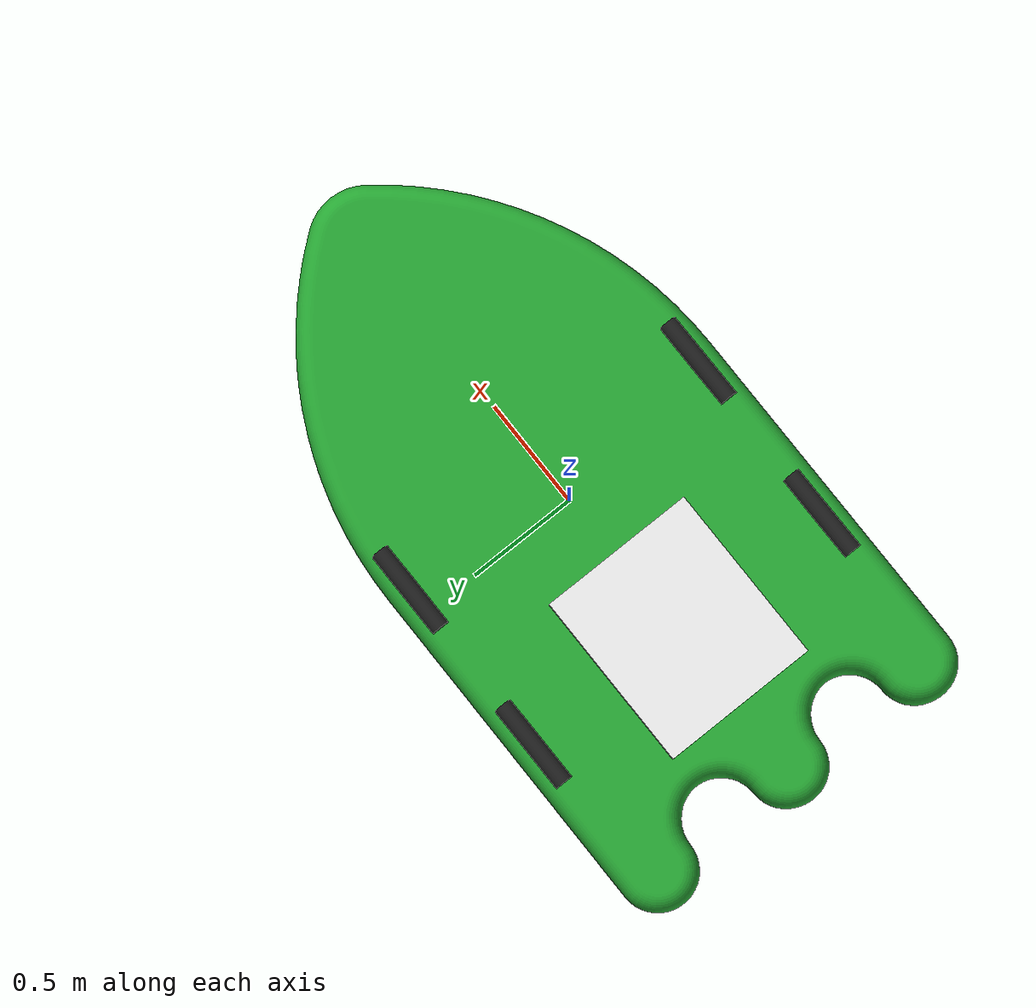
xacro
<?xml version="1.0"?>
<robot xmlns:xacro="http://ros.org/wiki/xacro" name="wam-v">

  <!-- Required arg for melodic and kinetic... -->
  <xacro:arg name="namespace" default="wamv"/>
  <xacro:property name="namespace" value="$(arg namespace)" scope="global" />
  <!-- Macro for creating the main collisions as simple shapes. -->
  <xacro:macro name="main_collisions" params="prefix reflect:=1">
    <!-- Main float -->
    <collision name="rear_${prefix}_beam_upper">
        <origin xyz="0 -0 0" rpy="0 0 3.1416" />
      <geometry>
        <mesh filename="package://wamv_description/models/WAM-V-Base/mesh/Balsa.dae" scale="0.15 0.15 015" />
      </geometry>
    </collision>

  </xacro:macro>

  <link name="${namespace}/base_link">
  </link>

  <joint name="${namespace}/dummy_joint" type = "fixed">
    <parent link="${namespace}/base_link"/>
    <child link="${namespace}/dummy_link"/>
  </joint>

  <joint name="${namespace}/dummy2_joint" type = "fixed">
    <parent link="${namespace}/base_link"/>
    <child link="${namespace}/dummy2_link"/>
  </joint>

  <joint name="${namespace}/dummy3_joint" type = "fixed">
    <parent link="${namespace}/base_link"/>
    <child link="${namespace}/dummy3_link"/>
  </joint>

    <joint name="${namespace}/imu_joint" type="fixed">
    <parent link="${namespace}/dummy_link"/>
    <child link="${namespace}/imu_link"/>
    <origin rpy="0 0 0" xyz="0 0 0" />
  </joint>

  <!-- Basic model of the 16' WAM-V USV -->
  <link name="${namespace}/dummy_link">
    <visual>
      <geometry>
        <mesh filename="package://wamv_description/models/WAM-V-Base/mesh/Balsa.dae" scale="0.1 0.1 0.1" />
      </geometry>
      <origin xyz="0 -0 0" rpy="0 0 3.1416" />
    </visual>

    <!-- Left base collisions -->
    <xacro:main_collisions prefix="left" reflect="1" />

    <!-- Right side collisions -->
    <xacro:main_collisions prefix="right" reflect="-1" />

    <inertial>
      <!-- From WAM-V spec sheet -->
      <mass value="180.0"/>
      <inertia ixx="120.0" ixy="0.0" ixz="0.0" iyy="393" iyz="0.0" izz="446.0"/>
    </inertial>
  </link>

  <link name="${namespace}/dummy2_link">
    <visual >
        <origin xyz="-0.7 0.75 0.26" rpy="0 1.6 0" />
      <geometry>
        <cylinder length="0.4" radius="0.04"/>
      </geometry>
    </visual>
    <visual >
        <origin xyz="-0.7 -0.75 0.26" rpy="0 1.6 0" />
      <geometry>
        <cylinder length="0.4" radius="0.04"/>
      </geometry>

    </visual>
    <visual >
        <origin xyz="0.1 -0.75 0.26" rpy="0 1.6 0" />
      <geometry>
        <cylinder length="0.4" radius="0.04"/>
      </geometry>
    </visual>
    <visual >
      <origin xyz="0.1 0.75 0.26" rpy="0 1.6 0" />
      <geometry>
        <cylinder length="0.4" radius="0.04"/>
      </geometry>

    </visual>

    <inertial>
      <!-- From WAM-V spec sheet -->
      <mass value="0.1"/>
      <inertia ixx="120.0" ixy="0.0" ixz="0.0" iyy="393" iyz="0.0" izz="446.0"/>
    </inertial>

  </link>

  <link name="${namespace}/dummy3_link">
    <visual >
        <origin xyz="-0.7 0 0.26" rpy="0 0 0" />
      <geometry>
        <box size="0.8 0.7 0.1"/>
      </geometry>
    </visual>
    <inertial>
      <!-- From WAM-V spec sheet -->
      <mass value="0.1"/>
      <inertia ixx="120.0" ixy="0.0" ixz="0.0" iyy="393" iyz="0.0" izz="446.0"/>
    </inertial>
  </link>

  <link name="${namespace}/imu_link">
    <visual>
      <geometry>
        <box size="0.01 0.01 0.01" />
      </geometry>
    </visual>
    <collision>
      <origin rpy="0 0 0" xyz="0 0 0" />
      <geometry>
        <box size="0.01 0.01 0.01" />
      </geometry>
    </collision>
  </link>

 <gazebo reference="${namespace}/dummy_link">
    <material>Gazebo/Green</material>
  </gazebo>
  <gazebo reference="${namespace}/dummy2_link">
    <material>Gazebo/Black</material>
  </gazebo>
  <gazebo reference="${namespace}/dummy3_link">
    <material>Gazebo/White</material>
  </gazebo>

<gazebo reference="${namespace}/imu_link">
<plugin name="gazebo_imu_plugin" filename="libgazebo_imu_plugin.so">
      <robotNamespace></robotNamespace>
      <linkName>${namespace}/imu_link</linkName>
      <imuTopic>/imu</imuTopic>
      <gyroscopeNoiseDensity>0.0003394</gyroscopeNoiseDensity>
      <gyroscopeRandomWalk>3.8785e-05</gyroscopeRandomWalk>
      <gyroscopeBiasCorrelationTime>1000.0</gyroscopeBiasCorrelationTime>
      <gyroscopeTurnOnBiasSigma>0.0087</gyroscopeTurnOnBiasSigma>
      <accelerometerNoiseDensity>0.004</accelerometerNoiseDensity>
      <accelerometerRandomWalk>0.006</accelerometerRandomWalk>
      <accelerometerBiasCorrelationTime>300.0</accelerometerBiasCorrelationTime>
      <accelerometerTurnOnBiasSigma>0.196</accelerometerTurnOnBiasSigma>
  </plugin>
</gazebo>

</robot>
